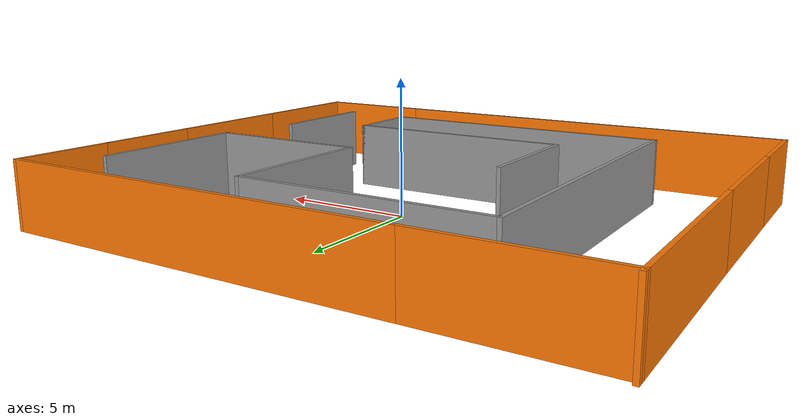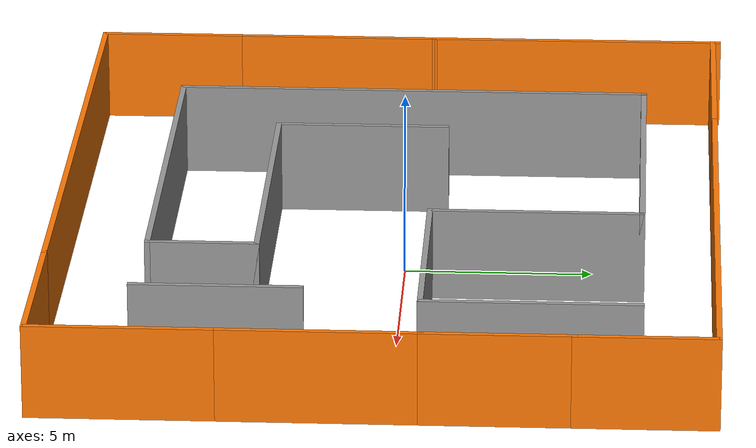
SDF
<?xml version='1.0'?>
<sdf version='1.7'>
  <model name='labirent'>
    <pose>-0.707299 -0.342839 0 0 -0 0</pose>
    <visual name='target_visual_1'>
        <geometry>
          <sphere> <!-- You can use a sphere as the target point -->
            <radius>0.2</radius> <!-- Adjust the radius as needed -->
          </sphere>
        </geometry>
        <material>
          <ambient>1 0.1 4 1</ambient> <!-- Red color for visibility -->
          <diffuse>1 2 0 1</diffuse>
        </material>
        <pose>3 0 1 0 0 0</pose>
        <cast_shadows>0</cast_shadows>
      </visual>

      <visual name='target_visual_2'>
        <geometry>
          <sphere> <!-- You can use a sphere as the target point -->
            <radius>0.2</radius> <!-- Adjust the radius as needed -->
          </sphere>
        </geometry>
        <material>
          <ambient>1 1 3 1</ambient> <!-- Red color for visibility -->
          <diffuse>1 0 0 1</diffuse>
        </material>
        <pose>0 -3 1 0 0 0</pose>
        <cast_shadows>0</cast_shadows>
      </visual>

      <visual name='target_visual_3'>
        <geometry>
          <sphere> <!-- You can use a sphere as the target point -->
            <radius>0.2</radius> <!-- Adjust the radius as needed -->
          </sphere>
        </geometry>
        <material>
          <ambient>1 3 1 1</ambient> <!-- Red color for visibility -->
          <diffuse>1 0 1 1</diffuse>
        </material>
        <pose>-3 0 1 0 0 0</pose>
        <cast_shadows>0</cast_shadows>
      </visual>
    <link name='Wall_12'>
      <collision name='Wall_12_Collision'>
        <geometry>
          <box>
            <size>5.75 0.15 2.5</size>
          </box>
        </geometry>
        <pose>0 0 1.25 0 -0 0</pose>
      </collision>

      <visual name='Wall_12_Visual'>
        <pose>0 0 1.25 0 -0 0</pose>
        <geometry>
          <box>
            <size>5.75 0.15 2.5</size>
          </box>
        </geometry>
        <material>
          <script>
            <uri>file://media/materials/scripts/gazebo.material</uri>
            <name>Gazebo/Grey</name>
          </script>
          <ambient>0.996078 0.47451 0.0196078 1</ambient>
        </material>
        <meta>
          <layer>0</layer>
        </meta>
      </visual>
      <pose>-10.5797 -2.12516 0 0 -0 -1.5708</pose>
    </link>
    <link name='Wall_14'>
      <collision name='Wall_14_Collision'>
        <geometry>
          <box>
            <size>4 0.15 2.5</size>
          </box>
        </geometry>
        <pose>0 0 1.25 0 -0 0</pose>
      </collision>
      <visual name='Wall_14_Visual'>
        <pose>0 0 1.25 0 -0 0</pose>
        <geometry>
          <box>
            <size>4 0.15 2.5</size>
          </box>
        </geometry>
        <material>
          <script>
            <uri>file://media/materials/scripts/gazebo.material</uri>
            <name>Gazebo/Grey</name>
          </script>
          <ambient>0.996078 0.47451 0.0196078 1</ambient>
        </material>
        <meta>
          <layer>0</layer>
        </meta>
      </visual>
      <pose>-10.5797 -6.85016 0 0 -0 -1.5708</pose>
    </link>
    <link name='Wall_15'>
      <collision name='Wall_15_Collision'>
        <geometry>
          <box>
            <size>16.5 0.15 2.5</size>
          </box>
        </geometry>
        <pose>0 0 1.25 0 -0 0</pose>
      </collision>
      <visual name='Wall_15_Visual'>
        <pose>0 0 1.25 0 -0 0</pose>
        <geometry>
          <box>
            <size>16.5 0.15 2.5</size>
          </box>
        </geometry>
        <material>
          <script>
            <uri>file://media/materials/scripts/gazebo.material</uri>
            <name>Gazebo/Grey</name>
          </script>
          <ambient>0.996078 0.47451 0.0196078 1</ambient>
        </material>
        <meta>
          <layer>0</layer>
        </meta>
      </visual>
      <pose>-2.4047 -8.77516 0 0 -0 0</pose>
    </link>
    <link name='Wall_17'>
      <collision name='Wall_17_Collision'>
        <geometry>
          <box>
            <size>5 0.15 2.5</size>
          </box>
        </geometry>
        <pose>0 0 1.25 0 -0 0</pose>
      </collision>
      <visual name='Wall_17_Visual'>
        <pose>0 0 1.25 0 -0 0</pose>
        <geometry>
          <box>
            <size>5 0.15 2.5</size>
          </box>
        </geometry>
        <material>
          <script>
            <uri>file://media/materials/scripts/gazebo.material</uri>
            <name>Gazebo/Grey</name>
          </script>
          <ambient>0.996078 0.47451 0.0196078 1</ambient>
        </material>
        <meta>
          <layer>0</layer>
        </meta>
      </visual>
      <pose>8.1953 -8.77516 0 0 -0 0</pose>
    </link>
    <link name='Wall_18'>
      <collision name='Wall_18_Collision'>
        <geometry>
          <box>
            <size>5 0.15 2.5</size>
          </box>
        </geometry>
        <pose>0 0 1.25 0 -0 0</pose>
      </collision>
      <visual name='Wall_18_Visual'>
        <pose>0 0 1.25 0 -0 0</pose>
        <geometry>
          <box>
            <size>5 0.15 2.5</size>
          </box>
        </geometry>
        <material>
          <script>
            <uri>file://media/materials/scripts/gazebo.material</uri>
            <name>Gazebo/Grey</name>
          </script>
          <ambient>0.996078 0.47451 0.0196078 1</ambient>
        </material>
        <meta>
          <layer>0</layer>
        </meta>
      </visual>
      <pose>10.6203 -6.35016 0 0 -0 1.5708</pose>
    </link>
    <link name='Wall_20'>
      <collision name='Wall_20_Collision'>
        <geometry>
          <box>
            <size>5.25 0.15 2.5</size>
          </box>
        </geometry>
        <pose>0 0 1.25 0 -0 0</pose>
      </collision>
      <visual name='Wall_20_Visual'>
        <pose>0 0 1.25 0 -0 0</pose>
        <geometry>
          <box>
            <size>5.25 0.15 2.5</size>
          </box>
        </geometry>
        <material>
          <script>
            <uri>file://media/materials/scripts/gazebo.material</uri>
            <name>Gazebo/Grey</name>
          </script>
          <ambient>0.996078 0.47451 0.0196078 1</ambient>
        </material>
        <meta>
          <layer>0</layer>
        </meta>
      </visual>
      <pose>10.6203 -1.37516 0 0 -0 1.5708</pose>
    </link>
    <link name='Wall_22'>
      <collision name='Wall_22_Collision'>
        <geometry>
          <box>
            <size>4 0.15 2.5</size>
          </box>
        </geometry>
        <pose>0 0 1.25 0 -0 0</pose>
      </collision>
      <visual name='Wall_22_Visual'>
        <pose>0 0 1.25 0 -0 0</pose>
        <geometry>
          <box>
            <size>4 0.15 2.5</size>
          </box>
        </geometry>
        <material>
          <script>
            <uri>file://media/materials/scripts/gazebo.material</uri>
            <name>Gazebo/Grey</name>
          </script>
          <ambient>0.996078 0.47451 0.0196078 1</ambient>
        </material>
        <meta>
          <layer>0</layer>
        </meta>
      </visual>
      <pose>10.6203 3.09984 0 0 -0 1.5708</pose>
    </link>
    <link name='Wall_24'>
      <collision name='Wall_24_Collision'>
        <geometry>
          <box>
            <size>3.75 0.15 2.5</size>
          </box>
        </geometry>
        <pose>0 0 1.25 0 -0 0</pose>
      </collision>
      <visual name='Wall_24_Visual'>
        <pose>0 0 1.25 0 -0 0</pose>
        <geometry>
          <box>
            <size>3.75 0.15 2.5</size>
          </box>
        </geometry>
        <material>
          <script>
            <uri>file://media/materials/scripts/gazebo.material</uri>
            <name>Gazebo/Grey</name>
          </script>
          <ambient>0.996078 0.47451 0.0196078 1</ambient>
        </material>
        <meta>
          <layer>0</layer>
        </meta>
      </visual>
      <pose>10.6203 6.82484 0 0 -0 1.5708</pose>
    </link>
    <link name='Wall_25'>
      <collision name='Wall_25_Collision'>
        <geometry>
          <box>
            <size>15.2902 0.15 2.5</size>
          </box>
        </geometry>
        <pose>0 0 1.25 0 -0 0</pose>
      </collision>
      <visual name='Wall_25_Visual'>
        <pose>0 0 1.25 0 -0 0</pose>
        <geometry>
          <box>
            <size>15.2902 0.15 2.5</size>
          </box>
        </geometry>
        <material>
          <script>
            <uri>file://media/materials/scripts/gazebo.material</uri>
            <name>Gazebo/Grey</name>
          </script>
          <ambient>0.996078 0.47451 0.0196078 1</ambient>
        </material>
        <meta>
          <layer>0</layer>
        </meta>
      </visual>
      <pose>3.05018 8.62484 0 0 -0 3.14159</pose>
    </link>
    <link name='Wall_27'>
      <collision name='Wall_27_Collision'>
        <geometry>
          <box>
            <size>8.25 0.15 2.5</size>
          </box>
        </geometry>
        <pose>0 0 1.25 0 -0 0</pose>
      </collision>
      <visual name='Wall_27_Visual'>
        <pose>0 0 1.25 0 -0 0</pose>
        <geometry>
          <box>
            <size>8.25 0.15 2.5</size>
          </box>
        </geometry>
        <material>
          <script>
            <uri>file://media/materials/scripts/gazebo.material</uri>
            <name>Gazebo/Grey</name>
          </script>
          <ambient>0.996078 0.47451 0.0196078 1</ambient>
        </material>
        <meta>
          <layer>0</layer>
        </meta>
      </visual>
      <pose>-10.5998 4.72484 0 0 -0 1.57576</pose>
    </link>
    <link name='Wall_30'>
      <collision name='Wall_30_Collision'>
        <geometry>
          <box>
            <size>6.25 0.15 2.5</size>
          </box>
        </geometry>
        <pose>0 0 1.25 0 -0 0</pose>
      </collision>
      <visual name='Wall_30_Visual'>
        <pose>0 0 1.25 0 -0 0</pose>
        <geometry>
          <box>
            <size>6.25 0.15 2.5</size>
          </box>
        </geometry>
        <material>
          <script>
            <uri>file://media/materials/scripts/gazebo.material</uri>
            <name>Gazebo/Grey</name>
          </script>
          <ambient>0.996078 0.47451 0.0196078 1</ambient>
        </material>
        <meta>
          <layer>0</layer>
        </meta>
      </visual>
      <pose>-7.56993 8.62484 0 0 -0 3.14159</pose>
    </link>
    <link name='Wall_32'>
      <collision name='Wall_32_Collision'>
        <geometry>
          <box>
            <size>4.75 0.15 2.5</size>
          </box>
        </geometry>
        <pose>0 0 1.25 0 -0 0</pose>
      </collision>
      <visual name='Wall_32_Visual'>
        <pose>0 0 1.25 0 -0 0</pose>
        <geometry>
          <box>
            <size>4.75 0.15 2.5</size>
          </box>
        </geometry>
        <material>
          <script>
            <uri>file://media/materials/scripts/gazebo.material</uri>
            <name>Gazebo/Grey</name>
          </script>
          <ambient>1 1 1 1</ambient>
        </material>
        <meta>
          <layer>0</layer>
        </meta>
      </visual>
      <pose>-3.6416 -1.02606 0 0 -0 -1.5708</pose>
    </link>
    <link name='Wall_33'>
      <collision name='Wall_33_Collision'>
        <geometry>
          <box>
            <size>8.75 0.15 2.5</size>
          </box>
        </geometry>
        <pose>0 0 1.25 0 -0 0</pose>
      </collision>
      <visual name='Wall_33_Visual'>
        <pose>0 0 1.25 0 -0 0</pose>
        <geometry>
          <box>
            <size>8.75 0.15 2.5</size>
          </box>
        </geometry>
        <material>
          <script>
            <uri>file://media/materials/scripts/gazebo.material</uri>
            <name>Gazebo/Grey</name>
          </script>
          <ambient>1 1 1 1</ambient>
        </material>
        <meta>
          <layer>0</layer>
        </meta>
      </visual>
      <pose>0.658405 -3.32606 0 0 -0 0</pose>
    </link>
    <link name='Wall_34'>
      <collision name='Wall_34_Collision'>
        <geometry>
          <box>
            <size>3 0.15 2.5</size>
          </box>
        </geometry>
        <pose>0 0 1.25 0 -0 0</pose>
      </collision>
      <visual name='Wall_34_Visual'>
        <pose>0 0 1.25 0 -0 0</pose>
        <geometry>
          <box>
            <size>3 0.15 2.5</size>
          </box>
        </geometry>
        <material>
          <script>
            <uri>file://media/materials/scripts/gazebo.material</uri>
            <name>Gazebo/Grey</name>
          </script>
          <ambient>1 1 1 1</ambient>
        </material>
        <meta>
          <layer>0</layer>
        </meta>
      </visual>
      <pose>4.9584 -4.75106 0 0 -0 -1.5708</pose>
    </link>
    <link name='Wall_35'>
      <collision name='Wall_35_Collision'>
        <geometry>
          <box>
            <size>11.5 0.15 2.5</size>
          </box>
        </geometry>
        <pose>0 0 1.25 0 -0 0</pose>
      </collision>
      <visual name='Wall_35_Visual'>
        <pose>0 0 1.25 0 -0 0</pose>
        <geometry>
          <box>
            <size>11.5 0.15 2.5</size>
          </box>
        </geometry>
        <material>
          <script>
            <uri>file://media/materials/scripts/gazebo.material</uri>
            <name>Gazebo/Grey</name>
          </script>
          <ambient>1 1 1 1</ambient>
        </material>
        <meta>
          <layer>0</layer>
        </meta>
      </visual>
      <pose>-0.716595 -6.17606 0 0 -0 3.14159</pose>
    </link>
    <link name='Wall_36'>
      <collision name='Wall_36_Collision'>
        <geometry>
          <box>
            <size>13 0.15 2.5</size>
          </box>
        </geometry>
        <pose>0 0 1.25 0 -0 0</pose>
      </collision>
      <visual name='Wall_36_Visual'>
        <pose>0 0 1.25 0 -0 0</pose>
        <geometry>
          <box>
            <size>13 0.15 2.5</size>
          </box>
        </geometry>
        <material>
          <script>
            <uri>file://media/materials/scripts/gazebo.material</uri>
            <name>Gazebo/Grey</name>
          </script>
          <ambient>1 1 1 1</ambient>
        </material>
        <meta>
          <layer>0</layer>
        </meta>
      </visual>
      <pose>-6.39159 0.248941 0 0 -0 1.5708</pose>
    </link>
    <link name='Wall_37'>
      <collision name='Wall_37_Collision'>
        <geometry>
          <box>
            <size>9 0.15 2.5</size>
          </box>
        </geometry>
        <pose>0 0 1.25 0 -0 0</pose>
      </collision>
      <visual name='Wall_37_Visual'>
        <pose>0 0 1.25 0 -0 0</pose>
        <geometry>
          <box>
            <size>9 0.15 2.5</size>
          </box>
        </geometry>
        <material>
          <script>
            <uri>file://media/materials/scripts/gazebo.material</uri>
            <name>Gazebo/Grey</name>
          </script>
          <ambient>1 1 1 1</ambient>
        </material>
        <meta>
          <layer>0</layer>
        </meta>
      </visual>
      <pose>-1.9666 6.67394 0 0 -0 0</pose>
    </link>
    <link name='Wall_38'>
      <collision name='Wall_38_Collision'>
        <geometry>
          <box>
            <size>5.75 0.15 2.5</size>
          </box>
        </geometry>
        <pose>0 0 1.25 0 -0 0</pose>
      </collision>
      <visual name='Wall_38_Visual'>
        <pose>0 0 1.25 0 -0 0</pose>
        <geometry>
          <box>
            <size>5.75 0.15 2.5</size>
          </box>
        </geometry>
        <material>
          <script>
            <uri>file://media/materials/scripts/gazebo.material</uri>
            <name>Gazebo/Grey</name>
          </script>
          <ambient>1 1 1 1</ambient>
        </material>
        <meta>
          <layer>0</layer>
        </meta>
      </visual>
      <pose>2.4584 3.87394 0 0 -0 -1.5708</pose>
    </link>
    <link name='Wall_39'>
      <collision name='Wall_39_Collision'>
        <geometry>
          <box>
            <size>6.25 0.15 2.5</size>
          </box>
        </geometry>
        <pose>0 0 1.25 0 -0 0</pose>
      </collision>
      <visual name='Wall_39_Visual'>
        <pose>0 0 1.25 0 -0 0</pose>
        <geometry>
          <box>
            <size>6.25 0.15 2.5</size>
          </box>
        </geometry>
        <material>
          <script>
            <uri>file://media/materials/scripts/gazebo.material</uri>
            <name>Gazebo/Grey</name>
          </script>
          <ambient>1 1 1 1</ambient>
        </material>
        <meta>
          <layer>0</layer>
        </meta>
      </visual>
      <pose>5.5084 1.07394 0 0 -0 0</pose>
    </link>
    <link name='Wall_40'>
      <collision name='Wall_40_Collision'>
        <geometry>
          <box>
            <size>5.75 0.15 2.5</size>
          </box>
        </geometry>
        <pose>0 0 1.25 0 -0 0</pose>
      </collision>
      <visual name='Wall_40_Visual'>
        <pose>0 0 1.25 0 -0 0</pose>
        <geometry>
          <box>
            <size>5.75 0.15 2.5</size>
          </box>
        </geometry>
        <material>
          <script>
            <uri>file://media/materials/scripts/gazebo.material</uri>
            <name>Gazebo/Grey</name>
          </script>
          <ambient>1 1 1 1</ambient>
        </material>
        <meta>
          <layer>0</layer>
        </meta>
      </visual>
      <pose>8.55841 3.87394 0 0 -0 1.5708</pose>
    </link>
    <link name='Wall_42'>
      <collision name='Wall_42_Collision'>
        <geometry>
          <box>
            <size>4.5 0.15 2.5</size>
          </box>
        </geometry>
        <pose>0 0 1.25 0 -0 0</pose>
      </collision>
      <visual name='Wall_42_Visual'>
        <pose>0 0 1.25 0 -0 0</pose>
        <geometry>
          <box>
            <size>4.5 0.15 2.5</size>
          </box>
        </geometry>
        <material>
          <script>
            <uri>file://media/materials/scripts/gazebo.material</uri>
            <name>Gazebo/Grey</name>
          </script>
          <ambient>1 1 1 1</ambient>
        </material>
        <meta>
          <layer>0</layer>
        </meta>
      </visual>
      <pose>7.80733 -4.17796 0 0 -0 -1.5708</pose>
    </link>
    <static>1</static>
  </model>
</sdf>
